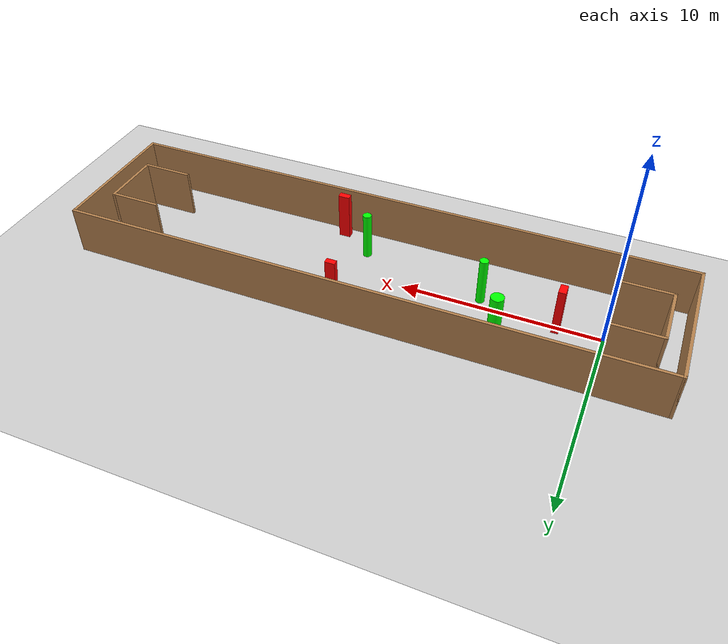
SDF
<sdf version="1.7">
 <world name="default">
  <light name="sun" type="directional">
   <pose>0 0 10 0 -0 0</pose>
   <diffuse>0.8 0.8 0.8 1</diffuse>
   <specular>0.2 0.2 0.2 1</specular>
   <attenuation>
    <range>1000</range>
    <constant>0.9</constant>
    <linear>0.01</linear>
    <quadratic>0.001</quadratic>
   </attenuation>
   <direction>-0.5 0.1 -0.9</direction>
   <spot><inner_angle>0</inner_angle><outer_angle>0</outer_angle><falloff>0</falloff></spot>
  </light>
  <model name="ground_plane">
   <static>1</static>
   <link name="link">
    <collision name="collision">
     <geometry><plane><normal>0 0 1</normal><size>100 100</size></plane></geometry>
     <surface>
      <contact><collide_bitmask>65535</collide_bitmask></contact>
      <friction><ode><mu>100</mu><mu2>50</mu2></ode></friction>
     </surface>
    </collision>
    <visual name="visual">
     <cast_shadows>0</cast_shadows>
     <geometry><plane><normal>0 0 1</normal><size>100 100</size></plane></geometry>
     <material>
      <script><uri>file://media/materials/scripts/gazebo.material</uri><name>Gazebo/Grey</name></script>
     </material>
    </visual>
   </link>
  </model>
  <gravity>0 0 -9.8</gravity>
  <magnetic_field>6e-06 2.3e-05 -4.2e-05</magnetic_field>
  <atmosphere type="adiabatic"/>
  <physics type="ode">
   <max_step_size>0.001</max_step_size>
   <real_time_factor>1</real_time_factor>
   <real_time_update_rate>1000</real_time_update_rate>
  </physics>
  <scene><ambient>0.4 0.4 0.4 1</ambient><background>0.7 0.7 0.7 1</background><shadows>1</shadows></scene>
  <spherical_coordinates>
   <surface_model>EARTH_WGS84</surface_model>
   <latitude_deg>0</latitude_deg>
   <longitude_deg>0</longitude_deg>
   <elevation>0</elevation>
   <heading_deg>0</heading_deg>
  </spherical_coordinates>
  <model name="my_base_walls">
   <link name="Wall_0">
    <collision name="Wall_0_Collision">
     <geometry><box><size>7.15 0.15 2.5</size></box></geometry>
     <pose>0 0 1.25 0 -0 0</pose>
    </collision>
    <visual name="Wall_0_Visual">
     <pose>0 0 1.25 0 -0 0</pose>
     <geometry><box><size>7.15 0.15 2.5</size></box></geometry>
     <material>
      <script><uri>file://media/materials/scripts/gazebo.material</uri><name>Gazebo/Wood</name></script>
      <ambient>1 1 1 1</ambient>
     </material>
     <meta><layer>0</layer></meta>
    </visual>
    <pose>-15 0 0 0 -0 1.5708</pose>
   </link>
   <link name="Wall_10">
    <collision name="Wall_10_Collision">
     <geometry><box><size>2.65 0.15 2.5</size></box></geometry>
     <pose>0 0 1.25 0 -0 0</pose>
    </collision>
    <visual name="Wall_10_Visual">
     <pose>0 0 1.25 0 -0 0</pose>
     <geometry><box><size>2.65 0.15 2.5</size></box></geometry>
     <material>
      <script><uri>file://media/materials/scripts/gazebo.material</uri><name>Gazebo/Wood</name></script>
      <ambient>1 1 1 1</ambient>
     </material>
     <meta><layer>0</layer></meta>
    </visual>
    <pose>-12.75 -1.5 0 0 -0 0</pose>
   </link>
   <link name="Wall_12">
    <collision name="Wall_12_Collision">
     <geometry><box><size>2.65 0.15 2.5</size></box></geometry>
     <pose>0 0 1.25 0 -0 0</pose>
    </collision>
    <visual name="Wall_12_Visual">
     <pose>0 0 1.25 0 -0 0</pose>
     <geometry><box><size>2.65 0.15 2.5</size></box></geometry>
     <material>
      <script><uri>file://media/materials/scripts/gazebo.material</uri><name>Gazebo/Wood</name></script>
      <ambient>1 1 1 1</ambient>
     </material>
     <meta><layer>0</layer></meta>
    </visual>
    <pose>-12.75 1.5 0 0 -0 0</pose>
   </link>
   <link name="Wall_14">
    <collision name="Wall_14_Collision">
     <geometry><box><size>3.15 0.15 2.5</size></box></geometry>
     <pose>0 0 1.25 0 -0 0</pose>
    </collision>
    <visual name="Wall_14_Visual">
     <pose>0 0 1.25 0 -0 0</pose>
     <geometry><box><size>3.15 0.15 2.5</size></box></geometry>
     <material>
      <script><uri>file://media/materials/scripts/gazebo.material</uri><name>Gazebo/Wood</name></script>
      <ambient>1 1 1 1</ambient>
     </material>
     <meta><layer>0</layer></meta>
    </visual>
    <pose>14 0 0 0 -0 -1.5708</pose>
   </link>
   <link name="Wall_15">
    <collision name="Wall_15_Collision">
     <geometry><box><size>2.65 0.15 2.5</size></box></geometry>
     <pose>0 0 1.25 0 -0 0</pose>
    </collision>
    <visual name="Wall_15_Visual">
     <pose>0 0 1.25 0 -0 0</pose>
     <geometry><box><size>2.65 0.15 2.5</size></box></geometry>
     <material>
      <script><uri>file://media/materials/scripts/gazebo.material</uri><name>Gazebo/Wood</name></script>
      <ambient>1 1 1 1</ambient>
     </material>
     <meta><layer>0</layer></meta>
    </visual>
    <pose>12.75 -1.5 0 0 -0 3.14159</pose>
   </link>
   <link name="Wall_17">
    <collision name="Wall_17_Collision">
     <geometry><box><size>2.65 0.15 2.5</size></box></geometry>
     <pose>0 0 1.25 0 -0 0</pose>
    </collision>
    <visual name="Wall_17_Visual">
     <pose>0 0 1.25 0 -0 0</pose>
     <geometry><box><size>2.65 0.15 2.5</size></box></geometry>
     <material>
      <script><uri>file://media/materials/scripts/gazebo.material</uri><name>Gazebo/Wood</name></script>
      <ambient>1 1 1 1</ambient>
     </material>
     <meta><layer>0</layer></meta>
    </visual>
    <pose>12.75 1.5 0 0 -0 3.14159</pose>
   </link>
   <link name="Wall_2">
    <collision name="Wall_2_Collision">
     <geometry><box><size>30.15 0.15 2.5</size></box></geometry>
     <pose>0 0 1.25 0 -0 0</pose>
    </collision>
    <visual name="Wall_2_Visual">
     <pose>0 0 1.25 0 -0 0</pose>
     <geometry><box><size>30.15 0.15 2.5</size></box></geometry>
     <material>
      <script><uri>file://media/materials/scripts/gazebo.material</uri><name>Gazebo/Wood</name></script>
      <ambient>1 1 1 1</ambient>
     </material>
     <meta><layer>0</layer></meta>
    </visual>
    <pose>-0 -3.5 0 0 -0 0</pose>
   </link>
   <link name="Wall_4">
    <collision name="Wall_4_Collision">
     <geometry><box><size>30.15 0.15 2.5</size></box></geometry>
     <pose>0 0 1.25 0 -0 0</pose>
    </collision>
    <visual name="Wall_4_Visual">
     <pose>0 0 1.25 0 -0 0</pose>
     <geometry><box><size>30.15 0.15 2.5</size></box></geometry>
     <material>
      <script><uri>file://media/materials/scripts/gazebo.material</uri><name>Gazebo/Wood</name></script>
      <ambient>1 1 1 1</ambient>
     </material>
     <meta><layer>0</layer></meta>
    </visual>
    <pose>-0 3.5 0 0 -0 0</pose>
   </link>
   <link name="Wall_6">
    <collision name="Wall_6_Collision">
     <geometry><box><size>7.15 0.15 2.5</size></box></geometry>
     <pose>0 0 1.25 0 -0 0</pose>
    </collision>
    <visual name="Wall_6_Visual">
     <pose>0 0 1.25 0 -0 0</pose>
     <geometry><box><size>7.15 0.15 2.5</size></box></geometry>
     <material>
      <script><uri>file://media/materials/scripts/gazebo.material</uri><name>Gazebo/Wood</name></script>
      <ambient>1 1 1 1</ambient>
     </material>
     <meta><layer>0</layer></meta>
    </visual>
    <pose>15 0 0 0 -0 -1.5708</pose>
   </link>
   <link name="Wall_9">
    <collision name="Wall_9_Collision">
     <geometry><box><size>3.15 0.15 2.5</size></box></geometry>
     <pose>0 0 1.25 0 -0 0</pose>
    </collision>
    <visual name="Wall_9_Visual">
     <pose>0 0 1.25 0 -0 0</pose>
     <geometry><box><size>3.15 0.15 2.5</size></box></geometry>
     <material>
      <script><uri>file://media/materials/scripts/gazebo.material</uri><name>Gazebo/Wood</name></script>
      <ambient>1 1 1 1</ambient>
     </material>
     <meta><layer>0</layer></meta>
    </visual>
    <pose>-14 0 0 0 -0 -1.5708</pose>
   </link>
   <static>1</static>
   <pose>11.5 0 0 0 -0 0</pose>
  </model>
  <model name="cylinder1">
   <static>1</static>
   <link name="link">
    <inertial>
     <mass>1</mass>
     <inertia><ixx>0.5</ixx><ixy>0</ixy><ixz>0</ixz><iyy>0.5</iyy><iyz>0</iyz><izz>1</izz></inertia>
    </inertial>
    <collision name="collision">
     <geometry><cylinder><radius>0.21841368219717852</radius><length>2.5</length></cylinder></geometry>
    </collision>
    <visual name="visual">
     <geometry><cylinder><radius>0.21841368219717852</radius><length>2.5</length></cylinder></geometry>
     <material>
      <ambient>0 1 0 1</ambient>
      <diffuse>0 1 0 1</diffuse>
      <specular>0.1 0.1 0.1 1</specular>
      <emissive>0 0 0 0</emissive>
     </material>
    </visual>
   </link>
   <pose>6.108643926150759 -0.5364039323280694 1.25 0 0 0</pose>
  </model>
  <model name="cylinder2">
   <static>1</static>
   <link name="link">
    <inertial>
     <mass>1</mass>
     <inertia><ixx>0.5</ixx><ixy>0</ixy><ixz>0</ixz><iyy>0.5</iyy><iyz>0</iyz><izz>1</izz></inertia>
    </inertial>
    <collision name="collision">
     <geometry><cylinder><radius>0.2205441393322069</radius><length>2.5</length></cylinder></geometry>
    </collision>
    <visual name="visual">
     <geometry><cylinder><radius>0.2205441393322069</radius><length>2.5</length></cylinder></geometry>
     <material>
      <ambient>0 1 0 1</ambient>
      <diffuse>0 1 0 1</diffuse>
      <specular>0.1 0.1 0.1 1</specular>
      <emissive>0 0 0 0</emissive>
     </material>
    </visual>
   </link>
   <pose>12.595388897990297 -1.7633195336753613 1.25 0 0 0</pose>
  </model>
  <model name="cylinder3">
   <static>1</static>
   <link name="link">
    <inertial>
     <mass>1</mass>
     <inertia><ixx>0.5</ixx><ixy>0</ixy><ixz>0</ixz><iyy>0.5</iyy><iyz>0</iyz><izz>1</izz></inertia>
    </inertial>
    <collision name="collision">
     <geometry><cylinder><radius>0.32328501965784345</radius><length>2.5</length></cylinder></geometry>
    </collision>
    <visual name="visual">
     <geometry><cylinder><radius>0.32328501965784345</radius><length>2.5</length></cylinder></geometry>
     <material>
      <ambient>0 1 0 1</ambient>
      <diffuse>0 1 0 1</diffuse>
      <specular>0.1 0.1 0.1 1</specular>
      <emissive>0 0 0 0</emissive>
     </material>
    </visual>
   </link>
   <pose>4.824891498751347 1.7256237300871646 1.25 0 0 0</pose>
  </model>
  <model name="box1">
   <static>1</static>
   <link name="link">
    <inertial>
     <mass>1</mass>
     <inertia><ixx>0.083</ixx><ixy>0</ixy><ixz>0</ixz><iyy>0.083</iyy><iyz>0</iyz><izz>0.083</izz></inertia>
    </inertial>
    <collision name="collision">
     <geometry><box><size>0.5908117961538439 0.32600926314321615 2.5</size></box></geometry>
    </collision>
    <visual name="visual">
     <geometry><box><size>0.5908117961538439 0.32600926314321615 2.5</size></box></geometry>
     <material>
      <ambient>1 0 0 1</ambient>
      <diffuse>1 0 0 1</diffuse>
      <specular>0.1 0.1 0.1 1</specular>
      <emissive>0 0 0 0</emissive>
     </material>
    </visual>
    <sensor name="my_contact" type="contact">
     <contact><collision>box_collision</collision><topic>__default_topic__</topic></contact>
    </sensor>
   </link>
   <pose>14.344806082813587 -2.9282963676482936 1.25 0 0 0</pose>
  </model>
  <model name="box2">
   <static>1</static>
   <link name="link">
    <inertial>
     <mass>1</mass>
     <inertia><ixx>0.083</ixx><ixy>0</ixy><ixz>0</ixz><iyy>0.083</iyy><iyz>0</iyz><izz>0.083</izz></inertia>
    </inertial>
    <collision name="collision">
     <geometry><box><size>0.35652855400431355 0.5996697239447293 2.5</size></box></geometry>
    </collision>
    <visual name="visual">
     <geometry><box><size>0.35652855400431355 0.5996697239447293 2.5</size></box></geometry>
     <material>
      <ambient>1 0 0 1</ambient>
      <diffuse>1 0 0 1</diffuse>
      <specular>0.1 0.1 0.1 1</specular>
      <emissive>0 0 0 0</emissive>
     </material>
    </visual>
    <sensor name="my_contact" type="contact">
     <contact><collision>box_collision</collision><topic>__default_topic__</topic></contact>
    </sensor>
   </link>
   <pose>2.2193289055322403 0.05657967874501901 1.25 0 0 0</pose>
  </model>
  <model name="box3">
   <static>1</static>
   <link name="link">
    <inertial>
     <mass>1</mass>
     <inertia><ixx>0.083</ixx><ixy>0</ixy><ixz>0</ixz><iyy>0.083</iyy><iyz>0</iyz><izz>0.083</izz></inertia>
    </inertial>
    <collision name="collision">
     <geometry><box><size>0.5192353959357208 0.300891132502042 2.5</size></box></geometry>
    </collision>
    <visual name="visual">
     <geometry><box><size>0.5192353959357208 0.300891132502042 2.5</size></box></geometry>
     <material>
      <ambient>1 0 0 1</ambient>
      <diffuse>1 0 0 1</diffuse>
      <specular>0.1 0.1 0.1 1</specular>
      <emissive>0 0 0 0</emissive>
     </material>
    </visual>
    <sensor name="my_contact" type="contact">
     <contact><collision>box_collision</collision><topic>__default_topic__</topic></contact>
    </sensor>
   </link>
   <pose>12.76396731560951 2.2674824725297498 1.25 0 0 0</pose>
  </model>
 </world>
</sdf>
